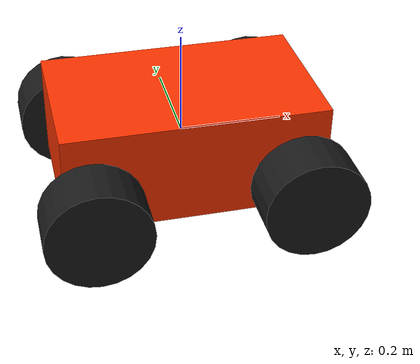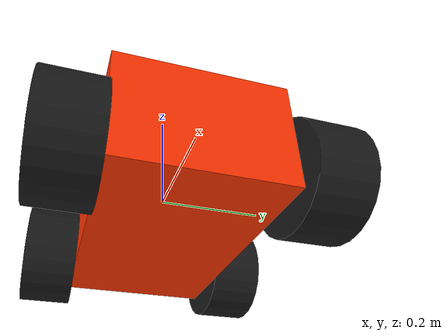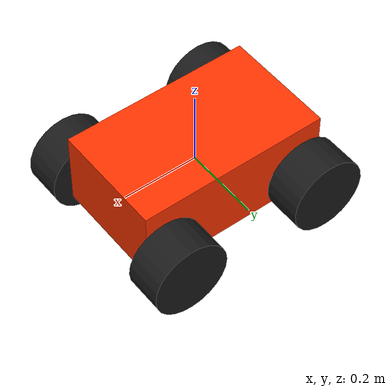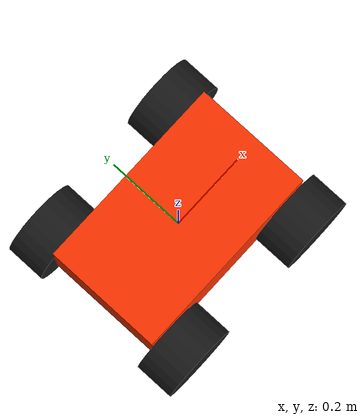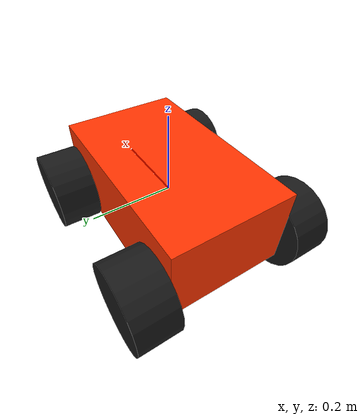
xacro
<?xml version="1.0"?>
<robot name="diff_drive_robot" xmlns:xacro="http://ros.org/wiki/xacro">

  <!-- #region inertia -->
  <xacro:macro name="cylinder_inertia" params="m r h">
    <inertia  ixx="${m*(3*r*r+h*h)/12}" ixy = "0" ixz = "0"
      iyy="${m*(3*r*r+h*h)/12}" iyz = "0"
      izz="${m*r*r/2}"/>
  </xacro:macro>

  <xacro:macro name="box_inertia" params="m x y z">
    <inertia  ixx="${m*(y*y+z*z)/12}" ixy = "0" ixz = "0"
      iyy="${m*(x*x+z*z)/12}" iyz = "0"
      izz="${m*(x*x+z*z)/12}"/>
  </xacro:macro>

  <xacro:macro name="sphere_inertia" params="m r">
    <inertia  ixx="${2*m*r*r/5}" ixy = "0" ixz = "0"
      iyy="${2*m*r*r/5}" iyz = "0"
      izz="${2*m*r*r/5}"/>
  </xacro:macro>
  <!-- #endregion -->

  <!-- #region: chassis and footprint -->
  <link name="base_link">
  </link>

  <link name="chassis">
    <visual>
      <geometry>
        <box size="0.5 0.3 0.2"></box>
      </geometry>
      <material name="chassis_color">
          <color rgba="1 0.2 0 1"/>
      </material>
    </visual>
    <collision name="chassis_collision">
      <geometry>
        <box size="0.5 0.3 0.2"></box>
      </geometry>
    </collision>
    <inertial>
      <mass value="1"/>
      <xacro:box_inertia m="1" x="0.5" y="0.3" z="0.2"/>
    </inertial>
  </link>

  <joint name="chassis_joint" type="fixed">
    <parent link="base_link"/>
    <child link="chassis"/>
  </joint>

  <!-- #endregion -->

  <!-- #region: wheel -->
  <xacro:macro name="wheel" params="prefix x y z" >

    <link name="${prefix}_wheel">
      <visual>
        <origin rpy="1.5708 0 0" xyz="0 0 0"/>
        <geometry>
          <cylinder radius="0.1" length="0.1"></cylinder>
        </geometry>
        <material name="wheel_color">
          <color rgba="0.1 0.1 0.1 1"/>
        </material>
      </visual>
      <collision>
        <origin rpy="1.5708 0 0" xyz="0 0 0"/>
        <geometry>
          <cylinder radius="0.1" length="0.1"></cylinder>
        </geometry>
      </collision>
      <inertial>
        <origin rpy="1.5708 0 0" xyz="0 0 0"/>
        <mass value="0.1"/>
        <xacro:cylinder_inertia m="0.1" r="0.1" h="0.1"/>
      </inertial>
    </link>

    <joint name="${prefix}_wheel_joint" type="continuous">
      <axis xyz="0 1 0"/>
      <parent link="chassis"/>
      <child link="${prefix}_wheel"/>
      <origin rpy="0 0 0" xyz="${x} ${y} ${z}"/>
      <limit effort="1000" velocity="100.0"/>
      <dynamics damping="0.5"/>
    </joint>

  </xacro:macro>

  <xacro:wheel prefix="front_left" x="0.2" y="0.2" z="-0.05" />
  <xacro:wheel prefix="front_right" x="0.2" y="-0.2" z="-0.05" />
  <xacro:wheel prefix="back_left" x="-0.2" y="0.2" z="-0.05" />
  <xacro:wheel prefix="back_right" x="-0.2" y="-0.2" z="-0.05" />
  <!-- #endregion -->

  <!-- #region: controller -->
  <gazebo>
    <plugin filename="ign_ros2_control-system" name="ign_ros2_control::IgnitionROS2ControlPlugin">
      <parameters>$(find diff_drive_robot)/config/diff_drive_robot.yaml</parameters>
    </plugin>
  </gazebo>

  <ros2_control name="IgnitionSystem" type="system">
    <hardware>
      <plugin>ign_ros2_control/IgnitionSystem</plugin>
    </hardware>
    <joint name="front_left_wheel_joint">
      <command_interface name="velocity"/>
      <state_interface name="position"/>
      <state_interface name="velocity"/>
      <state_interface name="effort"/>
    </joint>
    <joint name="front_right_wheel_joint">
      <command_interface name="velocity"/>
      <state_interface name="position"/>
      <state_interface name="velocity"/>
      <state_interface name="effort"/>
    </joint>
    <joint name="back_left_wheel_joint">
      <command_interface name="velocity"/>
      <state_interface name="position"/>
      <state_interface name="velocity"/>
      <state_interface name="effort"/>
    </joint>
        <joint name="back_right_wheel_joint">
      <command_interface name="velocity"/>
      <state_interface name="position"/>
      <state_interface name="velocity"/>
      <state_interface name="effort"/>
    </joint>
  </ros2_control>
  <!-- #endregion -->
</robot>
